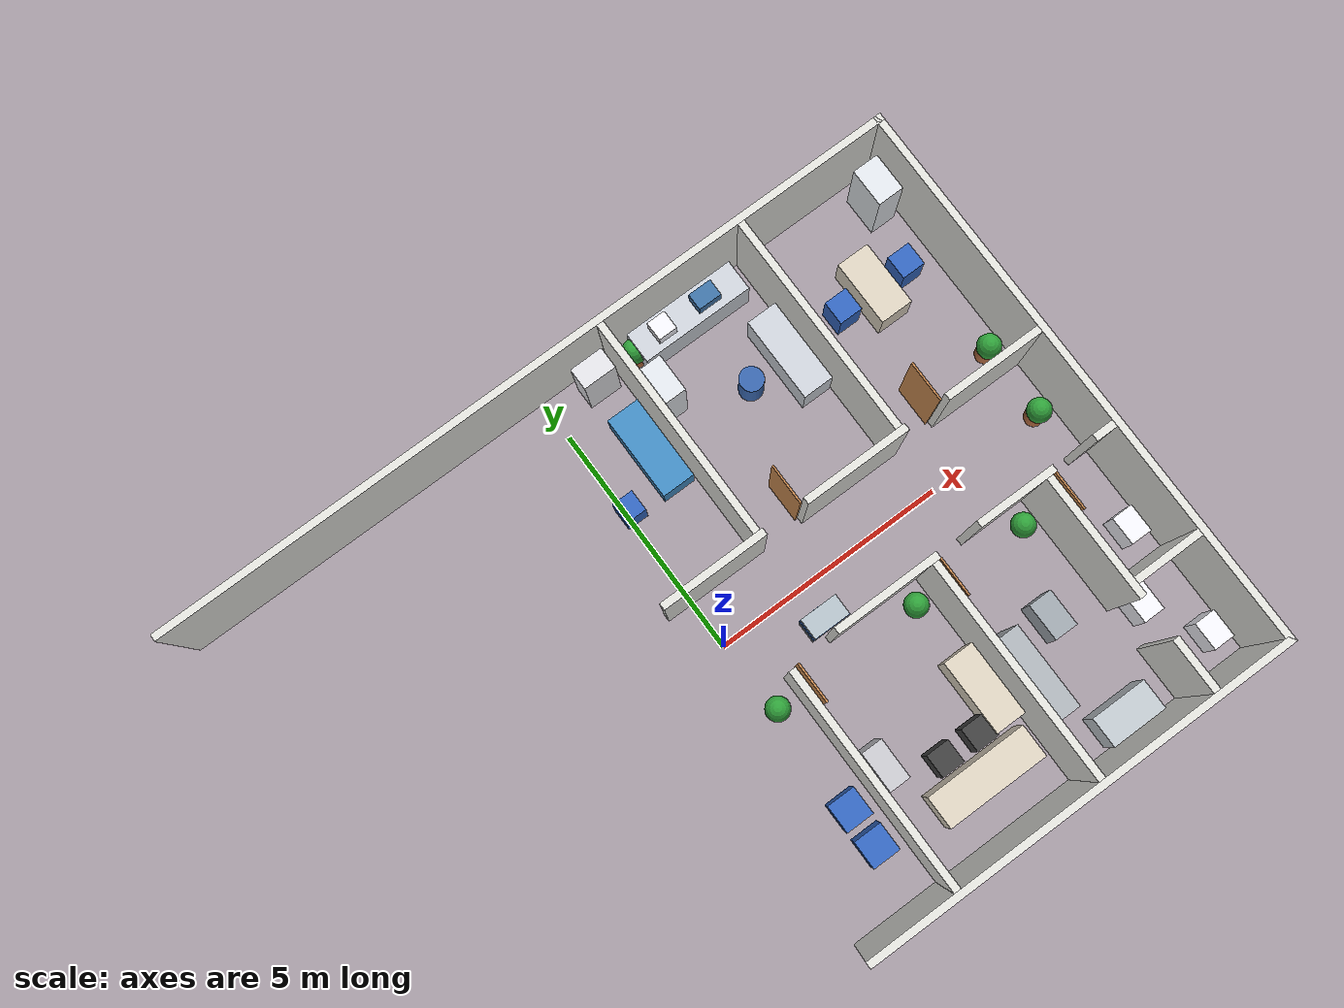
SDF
<sdf version="1.8">
 <world name="hospital">
  <model name="wall_perimeter_north">
   <static>true</static>
   <pose>0 5.925 1.2 0 0 0</pose>
   <link name="link">
    <collision name="col"><geometry><box><size>16.0 0.15 2.4</size></box></geometry></collision>
    <visual name="vis">
     <geometry><box><size>16.0 0.15 2.4</size></box></geometry>
     <material><ambient>0.85 0.85 0.83 1</ambient><diffuse>0.88 0.88 0.86 1</diffuse></material>
    </visual>
   </link>
  </model>
  <model name="wall_perimeter_east">
   <static>true</static>
   <pose>7.925 0 1.2 0 0 0</pose>
   <link name="link">
    <collision name="col"><geometry><box><size>0.15 12.0 2.4</size></box></geometry></collision>
    <visual name="vis">
     <geometry><box><size>0.15 12.0 2.4</size></box></geometry>
     <material><ambient>0.85 0.85 0.83 1</ambient><diffuse>0.88 0.88 0.86 1</diffuse></material>
    </visual>
   </link>
  </model>
  <model name="wall_perimeter_south_east">
   <static>true</static>
   <pose>3.325 -5.925 1.2 0 0 0</pose>
   <link name="link">
    <collision name="col"><geometry><box><size>9.35 0.15 2.4</size></box></geometry></collision>
    <visual name="vis">
     <geometry><box><size>9.35 0.15 2.4</size></box></geometry>
     <material><ambient>0.85 0.85 0.83 1</ambient><diffuse>0.88 0.88 0.86 1</diffuse></material>
    </visual>
   </link>
  </model>
  <model name="wall_nc_seg4">
   <static>true</static>
   <pose>0.575 1.075 1.2 0 0 0</pose>
   <link name="link">
    <collision name="col"><geometry><box><size>2.25 0.15 2.4</size></box></geometry></collision>
    <visual name="vis">
     <geometry><box><size>2.25 0.15 2.4</size></box></geometry>
     <material><ambient>0.85 0.85 0.83 1</ambient><diffuse>0.88 0.88 0.86 1</diffuse></material>
    </visual>
   </link>
  </model>
  <model name="wall_nc_seg5">
   <static>true</static>
   <pose>3.725 1.075 1.2 0 0 0</pose>
   <link name="link">
    <collision name="col"><geometry><box><size>2.25 0.15 2.4</size></box></geometry></collision>
    <visual name="vis">
     <geometry><box><size>2.25 0.15 2.4</size></box></geometry>
     <material><ambient>0.85 0.85 0.83 1</ambient><diffuse>0.88 0.88 0.86 1</diffuse></material>
    </visual>
   </link>
  </model>
  <model name="wall_nc_seg6">
   <static>true</static>
   <pose>6.80 1.075 1.2 0 0 0</pose>
   <link name="link">
    <collision name="col"><geometry><box><size>2.10 0.15 2.4</size></box></geometry></collision>
    <visual name="vis">
     <geometry><box><size>2.10 0.15 2.4</size></box></geometry>
     <material><ambient>0.85 0.85 0.83 1</ambient><diffuse>0.88 0.88 0.86 1</diffuse></material>
    </visual>
   </link>
  </model>
  <model name="wall_part_dr_lab">
   <static>true</static>
   <pose>1.575 3.50 1.2 0 0 0</pose>
   <link name="link">
    <collision name="col"><geometry><box><size>0.15 4.70 2.4</size></box></geometry></collision>
    <visual name="vis">
     <geometry><box><size>0.15 4.70 2.4</size></box></geometry>
     <material><ambient>0.85 0.85 0.83 1</ambient><diffuse>0.88 0.88 0.86 1</diffuse></material>
    </visual>
   </link>
  </model>
  <model name="wall_part_lab_sc">
   <static>true</static>
   <pose>4.725 3.50 1.2 0 0 0</pose>
   <link name="link">
    <collision name="col"><geometry><box><size>0.15 4.70 2.4</size></box></geometry></collision>
    <visual name="vis">
     <geometry><box><size>0.15 4.70 2.4</size></box></geometry>
     <material><ambient>0.85 0.85 0.83 1</ambient><diffuse>0.88 0.88 0.86 1</diffuse></material>
    </visual>
   </link>
  </model>
  <model name="wall_sc_seg4">
   <static>true</static>
   <pose>2.775 -1.075 1.2 0 0 0</pose>
   <link name="link">
    <collision name="col"><geometry><box><size>2.25 0.15 2.4</size></box></geometry></collision>
    <visual name="vis">
     <geometry><box><size>2.25 0.15 2.4</size></box></geometry>
     <material><ambient>0.85 0.85 0.83 1</ambient><diffuse>0.88 0.88 0.86 1</diffuse></material>
    </visual>
   </link>
  </model>
  <model name="wall_sc_seg5">
   <static>true</static>
   <pose>5.65 -1.075 1.2 0 0 0</pose>
   <link name="link">
    <collision name="col"><geometry><box><size>1.70 0.15 2.4</size></box></geometry></collision>
    <visual name="vis">
     <geometry><box><size>1.70 0.15 2.4</size></box></geometry>
     <material><ambient>0.85 0.85 0.83 1</ambient><diffuse>0.88 0.88 0.86 1</diffuse></material>
    </visual>
   </link>
  </model>
  <model name="wall_sc_seg6">
   <static>true</static>
   <pose>7.625 -1.075 1.2 0 0 0</pose>
   <link name="link">
    <collision name="col"><geometry><box><size>0.45 0.15 2.4</size></box></geometry></collision>
    <visual name="vis">
     <geometry><box><size>0.45 0.15 2.4</size></box></geometry>
     <material><ambient>0.85 0.85 0.83 1</ambient><diffuse>0.88 0.88 0.86 1</diffuse></material>
    </visual>
   </link>
  </model>
  <model name="wall_part_rw_ns">
   <static>true</static>
   <pose>0.625 -3.50 1.2 0 0 0</pose>
   <link name="link">
    <collision name="col"><geometry><box><size>0.15 4.70 2.4</size></box></geometry></collision>
    <visual name="vis">
     <geometry><box><size>0.15 4.70 2.4</size></box></geometry>
     <material><ambient>0.85 0.85 0.83 1</ambient><diffuse>0.88 0.88 0.86 1</diffuse></material>
    </visual>
   </link>
  </model>
  <model name="wall_part_ns_ut">
   <static>true</static>
   <pose>3.775 -3.50 1.2 0 0 0</pose>
   <link name="link">
    <collision name="col"><geometry><box><size>0.15 4.70 2.4</size></box></geometry></collision>
    <visual name="vis">
     <geometry><box><size>0.15 4.70 2.4</size></box></geometry>
     <material><ambient>0.85 0.85 0.83 1</ambient><diffuse>0.88 0.88 0.86 1</diffuse></material>
    </visual>
   </link>
  </model>
  <model name="wall_part_ut_toilets_north">
   <static>true</static>
   <pose>6.325 -2.475 1.2 0 0 0</pose>
   <link name="link">
    <collision name="col"><geometry><box><size>0.15 2.65 2.4</size></box></geometry></collision>
    <visual name="vis">
     <geometry><box><size>0.15 2.65 2.4</size></box></geometry>
     <material><ambient>0.85 0.85 0.83 1</ambient><diffuse>0.88 0.88 0.86 1</diffuse></material>
    </visual>
   </link>
  </model>
  <model name="wall_part_ut_toilets_south">
   <static>true</static>
   <pose>6.325 -5.275 1.2 0 0 0</pose>
   <link name="link">
    <collision name="col"><geometry><box><size>0.15 1.15 2.4</size></box></geometry></collision>
    <visual name="vis">
     <geometry><box><size>0.15 1.15 2.4</size></box></geometry>
     <material><ambient>0.85 0.85 0.83 1</ambient><diffuse>0.88 0.88 0.86 1</diffuse></material>
    </visual>
   </link>
  </model>
  <model name="wall_part_toilet_m_f">
   <static>true</static>
   <pose>7.125 -3.50 1.2 0 0 0</pose>
   <link name="link">
    <collision name="col"><geometry><box><size>1.45 0.15 2.4</size></box></geometry></collision>
    <visual name="vis">
     <geometry><box><size>1.45 0.15 2.4</size></box></geometry>
     <material><ambient>0.85 0.85 0.83 1</ambient><diffuse>0.88 0.88 0.86 1</diffuse></material>
    </visual>
   </link>
  </model>
  <model name="door_panel_lab">
   <static>true</static>
   <pose>2.55 1.55 1.05 0 0 0</pose>
   <link name="link">
    <visual name="vis">
     <geometry><box><size>0.04 0.85 2.1</size></box></geometry>
     <material><ambient>0.75 0.52 0.30 1</ambient><diffuse>0.80 0.55 0.32 1</diffuse></material>
    </visual>
   </link>
  </model>
  <model name="door_panel_sc">
   <static>true</static>
   <pose>5.70 1.55 1.05 0 0 0</pose>
   <link name="link">
    <visual name="vis">
     <geometry><box><size>0.04 0.85 2.1</size></box></geometry>
     <material><ambient>0.75 0.52 0.30 1</ambient><diffuse>0.80 0.55 0.32 1</diffuse></material>
    </visual>
   </link>
  </model>
  <model name="door_panel_ns">
   <static>true</static>
   <pose>0.80 -1.55 1.05 0 0 0</pose>
   <link name="link">
    <visual name="vis">
     <geometry><box><size>0.04 0.85 2.1</size></box></geometry>
     <material><ambient>0.75 0.52 0.30 1</ambient><diffuse>0.80 0.55 0.32 1</diffuse></material>
    </visual>
   </link>
  </model>
  <model name="door_panel_ut">
   <static>true</static>
   <pose>3.95 -1.55 1.05 0 0 0</pose>
   <link name="link">
    <visual name="vis">
     <geometry><box><size>0.04 0.85 2.1</size></box></geometry>
     <material><ambient>0.75 0.52 0.30 1</ambient><diffuse>0.80 0.55 0.32 1</diffuse></material>
    </visual>
   </link>
  </model>
  <model name="door_panel_toilet_m">
   <static>true</static>
   <pose>6.55 -1.55 1.05 0 0 0</pose>
   <link name="link">
    <visual name="vis">
     <geometry><box><size>0.04 0.85 2.1</size></box></geometry>
     <material><ambient>0.75 0.52 0.30 1</ambient><diffuse>0.80 0.55 0.32 1</diffuse></material>
    </visual>
   </link>
  </model>
  <model name="dr_visitor_chair_2">
   <static>true</static>
   <pose>0.10 3.10 0.40 0 0 0</pose>
   <link name="link">
    <collision name="col"><geometry><box><size>0.45 0.45 0.80</size></box></geometry></collision>
    <visual name="vis">
     <geometry><box><size>0.45 0.45 0.80</size></box></geometry>
     <material><ambient>0.18 0.35 0.65 1</ambient><diffuse>0.20 0.40 0.75 1</diffuse></material>
    </visual>
   </link>
  </model>
  <model name="dr_exam_couch">
   <static>true</static>
   <pose>1.10 3.80 0.325 0 0 0</pose>
   <link name="link">
    <collision name="col"><geometry><box><size>0.70 1.80 0.65</size></box></geometry></collision>
    <visual name="vis">
     <geometry><box><size>0.70 1.80 0.65</size></box></geometry>
     <material><ambient>0.22 0.50 0.70 1</ambient><diffuse>0.26 0.55 0.76 1</diffuse></material>
    </visual>
   </link>
  </model>
  <model name="dr_cabinet">
   <static>true</static>
   <pose>1.05 5.45 0.80 0 0 0</pose>
   <link name="link">
    <collision name="col"><geometry><box><size>0.70 0.45 1.60</size></box></geometry></collision>
    <visual name="vis">
     <geometry><box><size>0.70 0.45 1.60</size></box></geometry>
     <material><ambient>0.82 0.82 0.85 1</ambient><diffuse>0.88 0.88 0.90 1</diffuse></material>
    </visual>
   </link>
  </model>
  <model name="lab_bench_north">
   <static>true</static>
   <pose>3.20 5.45 0.45 0 0 0</pose>
   <link name="link">
    <collision name="col"><geometry><box><size>2.40 0.65 0.90</size></box></geometry></collision>
    <visual name="vis_bench">
     <geometry><box><size>2.40 0.65 0.90</size></box></geometry>
     <material><ambient>0.75 0.78 0.80 1</ambient><diffuse>0.80 0.82 0.85 1</diffuse></material>
    </visual>
    <visual name="vis_analyzer">
     <pose>-0.6 0 0.60 0 0 0</pose>
     <geometry><box><size>0.40 0.40 0.30</size></box></geometry>
     <material><ambient>0.9 0.9 0.95 1</ambient><diffuse>0.95 0.95 0.98 1</diffuse></material>
    </visual>
    <visual name="vis_centrifuge">
     <pose>0.4 0 0.60 0 0 0</pose>
     <geometry><box><size>0.50 0.35 0.30</size></box></geometry>
     <material><ambient>0.2 0.4 0.6 1</ambient><diffuse>0.25 0.45 0.65 1</diffuse></material>
    </visual>
   </link>
  </model>
  <model name="lab_bench_east">
   <static>true</static>
   <pose>4.30 3.70 0.45 0 0 0</pose>
   <link name="link">
    <collision name="col"><geometry><box><size>0.65 1.80 0.90</size></box></geometry></collision>
    <visual name="vis">
     <geometry><box><size>0.65 1.80 0.90</size></box></geometry>
     <material><ambient>0.75 0.78 0.80 1</ambient><diffuse>0.80 0.82 0.85 1</diffuse></material>
    </visual>
   </link>
  </model>
  <model name="lab_stool">
   <static>true</static>
   <pose>3.40 3.70 0.40 0 0 0</pose>
   <link name="link">
    <collision name="col">
     <geometry><cylinder><radius>0.25</radius><length>0.80</length></cylinder></geometry>
    </collision>
    <visual name="vis">
     <geometry><cylinder><radius>0.25</radius><length>0.80</length></cylinder></geometry>
     <material><ambient>0.18 0.35 0.60 1</ambient><diffuse>0.22 0.40 0.68 1</diffuse></material>
    </visual>
   </link>
  </model>
  <model name="lab_cabinet">
   <static>true</static>
   <pose>1.95 4.50 0.85 0 0 0</pose>
   <link name="link">
    <collision name="col"><geometry><box><size>0.45 0.80 1.70</size></box></geometry></collision>
    <visual name="vis">
     <geometry><box><size>0.45 0.80 1.70</size></box></geometry>
     <material><ambient>0.82 0.85 0.88 1</ambient><diffuse>0.88 0.90 0.92 1</diffuse></material>
    </visual>
   </link>
  </model>
  <model name="lab_plant">
   <static>true</static>
   <pose>1.95 5.50 0.40 0 0 0</pose>
   <link name="link">
    <collision name="col">
     <geometry><cylinder><radius>0.22</radius><length>0.80</length></cylinder></geometry>
    </collision>
    <visual name="vis_pot">
     <pose>0 0 -0.15 0 0 0</pose>
     <geometry><cylinder><radius>0.20</radius><length>0.45</length></cylinder></geometry>
     <material><ambient>0.65 0.38 0.22 1</ambient><diffuse>0.70 0.42 0.25 1</diffuse></material>
    </visual>
    <visual name="vis_plant">
     <pose>0 0 0.20 0 0 0</pose>
     <geometry><sphere><radius>0.25</radius></sphere></geometry>
     <material><ambient>0.15 0.55 0.20 1</ambient><diffuse>0.18 0.62 0.22 1</diffuse></material>
    </visual>
   </link>
  </model>
  <model name="sc_counter">
   <static>true</static>
   <pose>6.40 3.80 0.40 0 0 0</pose>
   <link name="link">
    <collision name="col"><geometry><box><size>0.70 1.40 0.80</size></box></geometry></collision>
    <visual name="vis">
     <geometry><box><size>0.70 1.40 0.80</size></box></geometry>
     <material><ambient>0.82 0.78 0.70 1</ambient><diffuse>0.86 0.82 0.75 1</diffuse></material>
    </visual>
   </link>
  </model>
  <model name="sc_patient_chair">
   <static>true</static>
   <pose>5.65 3.80 0.40 0 0 0</pose>
   <link name="link">
    <collision name="col"><geometry><box><size>0.50 0.50 0.80</size></box></geometry></collision>
    <visual name="vis">
     <geometry><box><size>0.50 0.50 0.80</size></box></geometry>
     <material><ambient>0.18 0.35 0.65 1</ambient><diffuse>0.20 0.40 0.75 1</diffuse></material>
    </visual>
   </link>
  </model>
  <model name="sc_staff_chair">
   <static>true</static>
   <pose>7.15 3.80 0.40 0 0 0</pose>
   <link name="link">
    <collision name="col"><geometry><box><size>0.50 0.50 0.80</size></box></geometry></collision>
    <visual name="vis">
     <geometry><box><size>0.50 0.50 0.80</size></box></geometry>
     <material><ambient>0.18 0.35 0.65 1</ambient><diffuse>0.20 0.40 0.75 1</diffuse></material>
    </visual>
   </link>
  </model>
  <model name="sc_cabinet">
   <static>true</static>
   <pose>7.45 5.20 0.80 0 0 0</pose>
   <link name="link">
    <collision name="col"><geometry><box><size>0.55 0.80 1.60</size></box></geometry></collision>
    <visual name="vis">
     <geometry><box><size>0.55 0.80 1.60</size></box></geometry>
     <material><ambient>0.82 0.85 0.88 1</ambient><diffuse>0.88 0.90 0.92 1</diffuse></material>
    </visual>
   </link>
  </model>
  <model name="sc_plant">
   <static>true</static>
   <pose>7.45 1.55 0.40 0 0 0</pose>
   <link name="link">
    <collision name="col">
     <geometry><cylinder><radius>0.22</radius><length>0.80</length></cylinder></geometry>
    </collision>
    <visual name="vis_pot">
     <pose>0 0 -0.15 0 0 0</pose>
     <geometry><cylinder><radius>0.20</radius><length>0.45</length></cylinder></geometry>
     <material><ambient>0.65 0.38 0.22 1</ambient><diffuse>0.70 0.42 0.25 1</diffuse></material>
    </visual>
    <visual name="vis_plant">
     <pose>0 0 0.20 0 0 0</pose>
     <geometry><sphere><radius>0.25</radius></sphere></geometry>
     <material><ambient>0.15 0.55 0.20 1</ambient><diffuse>0.18 0.62 0.22 1</diffuse></material>
    </visual>
   </link>
  </model>
  <model name="rw_waiting_chair_r1">
   <static>true</static>
   <pose>0.05 -3.80 0.40 0 0 0</pose>
   <link name="link">
    <collision name="col"><geometry><box><size>0.60 0.60 0.80</size></box></geometry></collision>
    <visual name="vis">
     <geometry><box><size>0.60 0.60 0.80</size></box></geometry>
     <material><ambient>0.18 0.35 0.65 1</ambient><diffuse>0.20 0.40 0.75 1</diffuse></material>
    </visual>
   </link>
  </model>
  <model name="rw_waiting_chair_r2">
   <static>true</static>
   <pose>0.05 -4.60 0.40 0 0 0</pose>
   <link name="link">
    <collision name="col"><geometry><box><size>0.60 0.60 0.80</size></box></geometry></collision>
    <visual name="vis">
     <geometry><box><size>0.60 0.60 0.80</size></box></geometry>
     <material><ambient>0.18 0.35 0.65 1</ambient><diffuse>0.20 0.40 0.75 1</diffuse></material>
    </visual>
   </link>
  </model>
  <model name="rw_plant_2">
   <static>true</static>
   <pose>0.10 -1.55 0.40 0 0 0</pose>
   <link name="link">
    <collision name="col">
     <geometry><cylinder><radius>0.22</radius><length>0.80</length></cylinder></geometry>
    </collision>
    <visual name="vis">
     <geometry><sphere><radius>0.25</radius></sphere></geometry>
     <material><ambient>0.15 0.55 0.20 1</ambient><diffuse>0.18 0.62 0.22 1</diffuse></material>
    </visual>
   </link>
  </model>
  <model name="ns_work_counter">
   <static>true</static>
   <pose>2.40 -4.80 0.45 0 0 0</pose>
   <link name="link">
    <collision name="col"><geometry><box><size>2.20 0.70 0.90</size></box></geometry></collision>
    <visual name="vis">
     <geometry><box><size>2.20 0.70 0.90</size></box></geometry>
     <material><ambient>0.82 0.78 0.70 1</ambient><diffuse>0.86 0.82 0.75 1</diffuse></material>
    </visual>
   </link>
  </model>
  <model name="ns_side_counter">
   <static>true</static>
   <pose>3.35 -3.50 0.45 0 0 0</pose>
   <link name="link">
    <collision name="col"><geometry><box><size>0.65 1.60 0.90</size></box></geometry></collision>
    <visual name="vis">
     <geometry><box><size>0.65 1.60 0.90</size></box></geometry>
     <material><ambient>0.82 0.78 0.70 1</ambient><diffuse>0.86 0.82 0.75 1</diffuse></material>
    </visual>
   </link>
  </model>
  <model name="ns_chair_1">
   <static>true</static>
   <pose>2.00 -4.10 0.40 0 0 0</pose>
   <link name="link">
    <collision name="col"><geometry><box><size>0.50 0.50 0.80</size></box></geometry></collision>
    <visual name="vis">
     <geometry><box><size>0.50 0.50 0.80</size></box></geometry>
     <material><ambient>0.2 0.2 0.2 1</ambient><diffuse>0.25 0.25 0.25 1</diffuse></material>
    </visual>
   </link>
  </model>
  <model name="ns_chair_2">
   <static>true</static>
   <pose>2.80 -4.10 0.40 0 0 0</pose>
   <link name="link">
    <collision name="col"><geometry><box><size>0.50 0.50 0.80</size></box></geometry></collision>
    <visual name="vis">
     <geometry><box><size>0.50 0.50 0.80</size></box></geometry>
     <material><ambient>0.2 0.2 0.2 1</ambient><diffuse>0.25 0.25 0.25 1</diffuse></material>
    </visual>
   </link>
  </model>
  <model name="ns_filing_cabinet">
   <static>true</static>
   <pose>1.00 -3.50 0.75 0 0 0</pose>
   <link name="link">
    <collision name="col"><geometry><box><size>0.45 0.85 1.50</size></box></geometry></collision>
    <visual name="vis">
     <geometry><box><size>0.45 0.85 1.50</size></box></geometry>
     <material><ambient>0.72 0.72 0.75 1</ambient><diffuse>0.78 0.78 0.80 1</diffuse></material>
    </visual>
   </link>
  </model>
  <model name="ns_plant">
   <static>true</static>
   <pose>3.35 -1.55 0.40 0 0 0</pose>
   <link name="link">
    <collision name="col">
     <geometry><cylinder><radius>0.22</radius><length>0.80</length></cylinder></geometry>
    </collision>
    <visual name="vis">
     <geometry><sphere><radius>0.25</radius></sphere></geometry>
     <material><ambient>0.15 0.55 0.20 1</ambient><diffuse>0.18 0.62 0.22 1</diffuse></material>
    </visual>
   </link>
  </model>
  <model name="ut_storage_racks">
   <static>true</static>
   <pose>4.15 -3.80 0.90 0 0 0</pose>
   <link name="link">
    <collision name="col"><geometry><box><size>0.45 1.80 1.80</size></box></geometry></collision>
    <visual name="vis">
     <geometry><box><size>0.45 1.80 1.80</size></box></geometry>
     <material><ambient>0.62 0.65 0.68 1</ambient><diffuse>0.68 0.70 0.72 1</diffuse></material>
    </visual>
   </link>
  </model>
  <model name="ut_work_table">
   <static>true</static>
   <pose>5.20 -5.45 0.425 0 0 0</pose>
   <link name="link">
    <collision name="col"><geometry><box><size>1.20 0.65 0.85</size></box></geometry></collision>
    <visual name="vis">
     <geometry><box><size>1.20 0.65 0.85</size></box></geometry>
     <material><ambient>0.70 0.72 0.75 1</ambient><diffuse>0.75 0.78 0.80 1</diffuse></material>
    </visual>
   </link>
  </model>
  <model name="ut_supply_cart">
   <static>true</static>
   <pose>5.20 -3.20 0.425 0 0 0</pose>
   <link name="link">
    <collision name="col"><geometry><box><size>0.50 0.80 0.85</size></box></geometry></collision>
    <visual name="vis">
     <geometry><box><size>0.50 0.80 0.85</size></box></geometry>
     <material><ambient>0.58 0.60 0.62 1</ambient><diffuse>0.62 0.65 0.68 1</diffuse></material>
    </visual>
   </link>
  </model>
  <model name="ut_plant">
   <static>true</static>
   <pose>5.90 -1.55 0.40 0 0 0</pose>
   <link name="link">
    <collision name="col">
     <geometry><cylinder><radius>0.22</radius><length>0.80</length></cylinder></geometry>
    </collision>
    <visual name="vis">
     <geometry><sphere><radius>0.25</radius></sphere></geometry>
     <material><ambient>0.15 0.55 0.20 1</ambient><diffuse>0.18 0.62 0.22 1</diffuse></material>
    </visual>
   </link>
  </model>
  <model name="toilet_m_sink">
   <static>true</static>
   <pose>6.70 -1.55 0.425 0 0 0</pose>
   <link name="link">
    <collision name="col"><geometry><box><size>0.45 0.65 0.85</size></box></geometry></collision>
    <visual name="vis">
     <geometry><box><size>0.45 0.65 0.85</size></box></geometry>
     <material><ambient>0.9 0.9 0.92 1</ambient><diffuse>0.95 0.95 0.98 1</diffuse></material>
    </visual>
   </link>
  </model>
  <model name="toilet_m_fixture">
   <static>true</static>
   <pose>7.45 -2.75 0.375 0 0 0</pose>
   <link name="link">
    <collision name="col"><geometry><box><size>0.45 0.60 0.75</size></box></geometry></collision>
    <visual name="vis">
     <geometry><box><size>0.45 0.60 0.75</size></box></geometry>
     <material><ambient>0.9 0.9 0.92 1</ambient><diffuse>0.95 0.95 0.98 1</diffuse></material>
    </visual>
   </link>
  </model>
  <model name="toilet_f_sink">
   <static>true</static>
   <pose>6.70 -4.00 0.425 0 0 0</pose>
   <link name="link">
    <collision name="col"><geometry><box><size>0.45 0.65 0.85</size></box></geometry></collision>
    <visual name="vis">
     <geometry><box><size>0.45 0.65 0.85</size></box></geometry>
     <material><ambient>0.9 0.9 0.92 1</ambient><diffuse>0.95 0.95 0.98 1</diffuse></material>
    </visual>
   </link>
  </model>
  <model name="toilet_f_fixture">
   <static>true</static>
   <pose>7.45 -5.20 0.375 0 0 0</pose>
   <link name="link">
    <collision name="col"><geometry><box><size>0.45 0.60 0.75</size></box></geometry></collision>
    <visual name="vis">
     <geometry><box><size>0.45 0.60 0.75</size></box></geometry>
     <material><ambient>0.9 0.9 0.92 1</ambient><diffuse>0.95 0.95 0.98 1</diffuse></material>
    </visual>
   </link>
  </model>
  <model name="corridor_medical_trolley">
   <static>true</static>
   <pose>1.80 -0.72 0.425 0 0 0</pose>
   <link name="link">
    <collision name="col"><geometry><box><size>0.80 0.45 0.85</size></box></geometry></collision>
    <visual name="vis_body">
     <geometry><box><size>0.80 0.45 0.85</size></box></geometry>
     <material>
      <ambient>0.65 0.68 0.72 1</ambient>
      <diffuse>0.70 0.75 0.78 1</diffuse>
      <specular>0.3 0.3 0.3 1</specular>
     </material>
    </visual>
    <visual name="vis_drawers">
     <pose>0 0 0.15 0 0 0</pose>
     <geometry><box><size>0.82 0.46 0.30</size></box></geometry>
     <material><ambient>0.18 0.38 0.65 1</ambient><diffuse>0.22 0.42 0.72 1</diffuse></material>
    </visual>
   </link>
  </model>
  <model name="corridor_plant_east">
   <static>true</static>
   <pose>7.45 0.0 0.40 0 0 0</pose>
   <link name="link">
    <collision name="col">
     <geometry><cylinder><radius>0.22</radius><length>0.80</length></cylinder></geometry>
    </collision>
    <visual name="vis_pot">
     <pose>0 0 -0.15 0 0 0</pose>
     <geometry><cylinder><radius>0.20</radius><length>0.45</length></cylinder></geometry>
     <material><ambient>0.65 0.38 0.22 1</ambient><diffuse>0.70 0.42 0.25 1</diffuse></material>
    </visual>
    <visual name="vis_plant">
     <pose>0 0 0.20 0 0 0</pose>
     <geometry><sphere><radius>0.25</radius></sphere></geometry>
     <material><ambient>0.15 0.55 0.20 1</ambient><diffuse>0.18 0.62 0.22 1</diffuse></material>
    </visual>
   </link>
  </model>
 </world>
</sdf>
